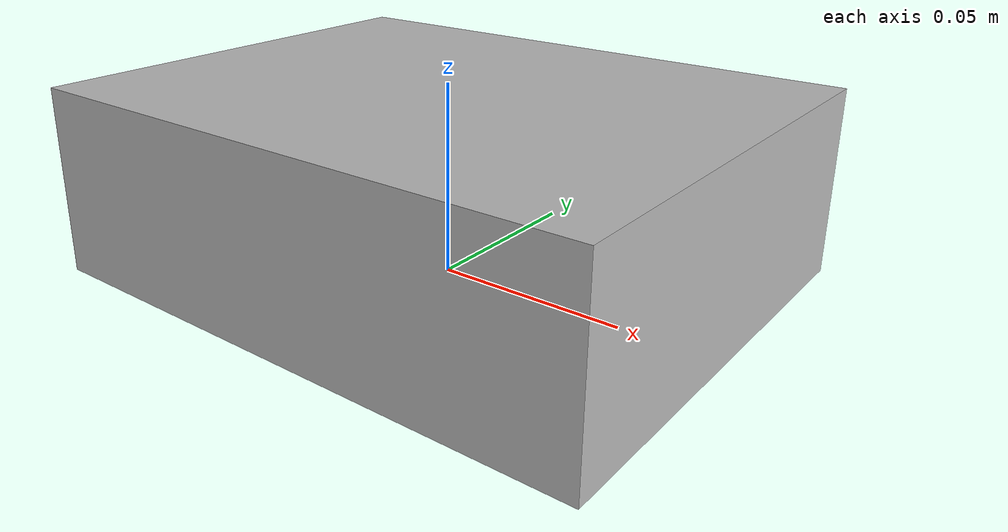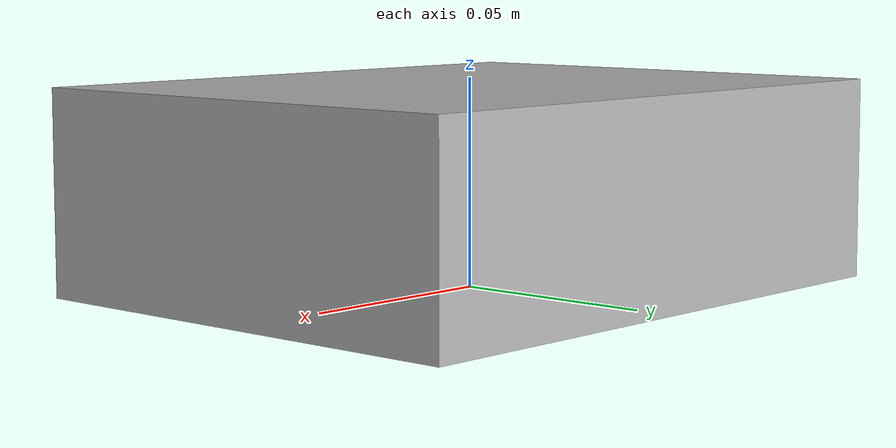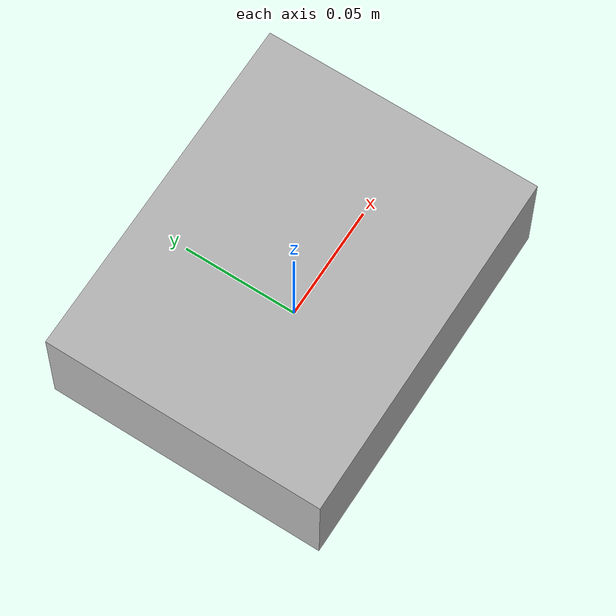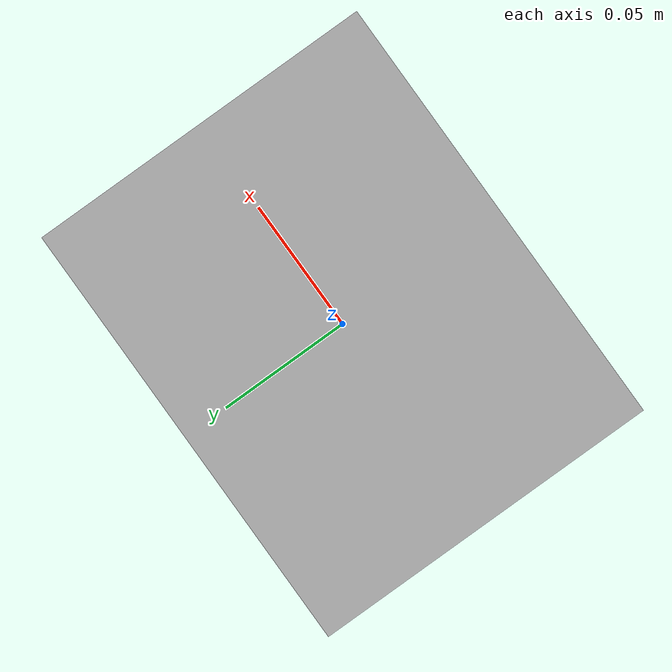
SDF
<sdf version="1.10">
    <model name="cereal">
        <static>true</static>
        <link name="link">
            <pose>0 0 0 0 0 0</pose>
            <collision name="collision">
                <geometry>
                    <mesh>
                        <uri>
                            model://cereal.obj</uri>
                    </mesh>
                </geometry>
            </collision>
            <visual name="visual">
                <geometry>
                    <mesh>
                        <uri>
                            model://cereal.obj</uri>
                    </mesh>
                </geometry>
            </visual>
        </link>
    </model>
</sdf>
